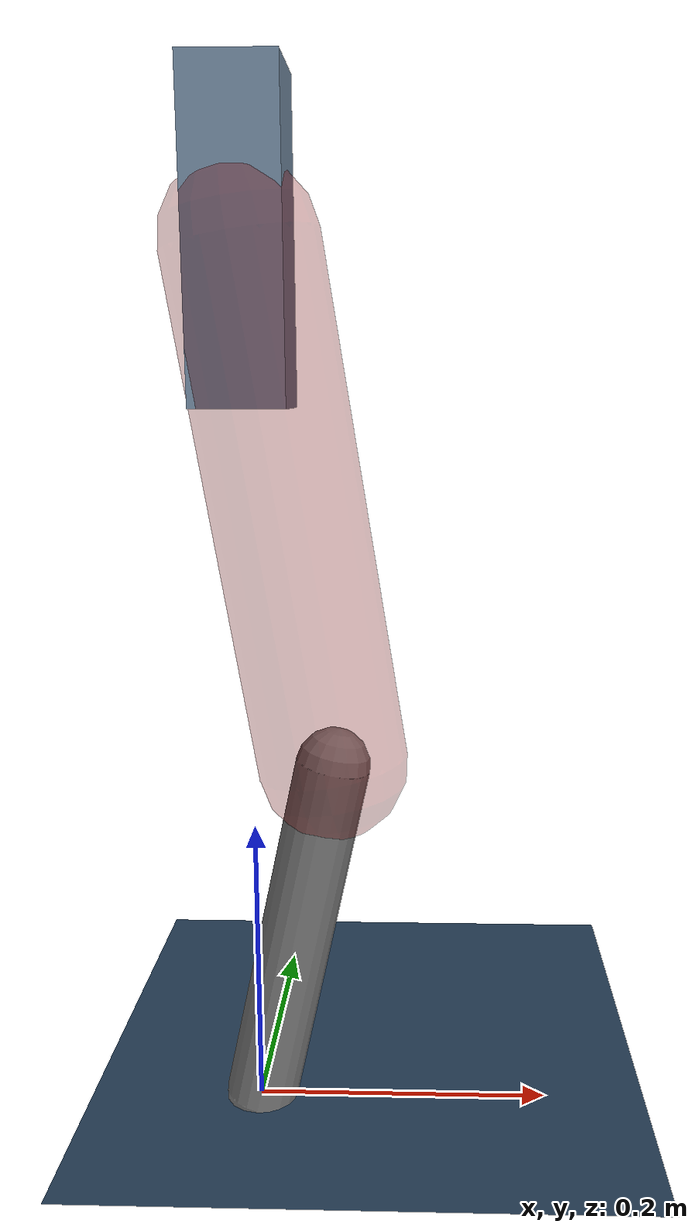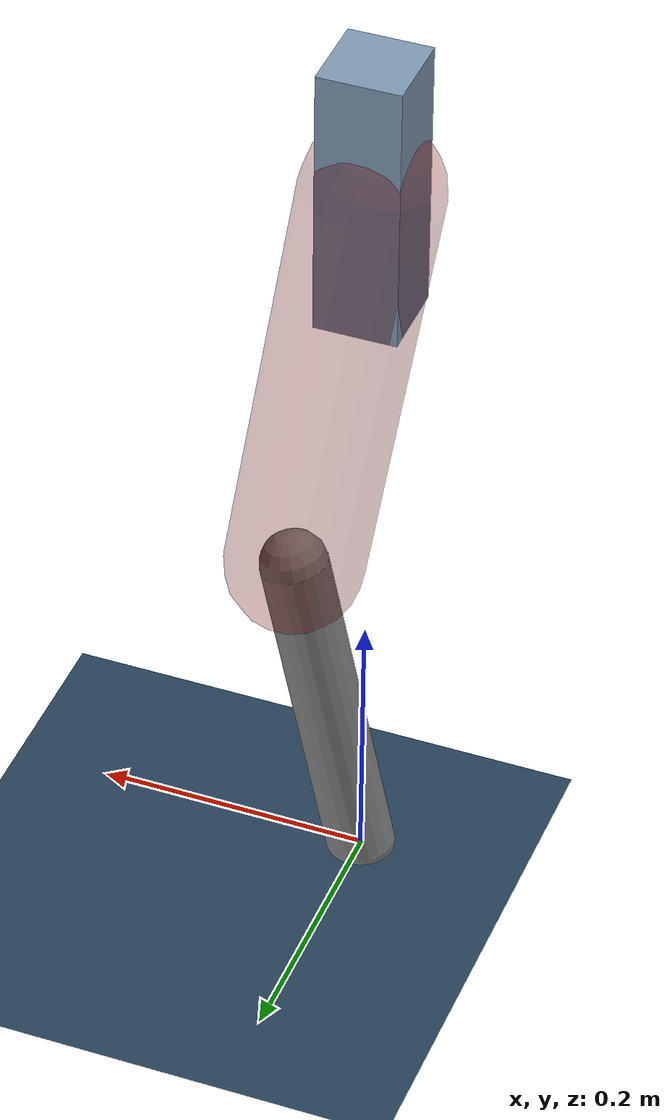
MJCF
<mujoco model="Hopper2D">
	<compiler inertiafromgeom="true" angle="radian" />
	<option timestep="0.001" integrator="implicit" cone="elliptic" solver="Newton" tolerance="1e-10" />

	<default>
		<geom contype="1" conaffinity="1" condim="3" friction="2 0.005 0.0001" solref="0.005 1" />
		<joint limited="true" damping="0.1" />
	</default>

	<asset>
		<texture name="skybox" type="skybox" builtin="gradient" rgb1=".4 .6 .8" rgb2="0 0 0" width="800" height="800" />
		<texture name="grid" type="2d" builtin="checker" rgb1=".1 .2 .3" rgb2=".2 .3 .4" width="300" height="300" mark="edge" markrgb=".2 .3 .4" />
		<material name="ground" texture="grid" texrepeat="1 1" texuniform="true" reflectance="0.1" />
		<material name="leg" rgba="0.5 0.6 0.7 1" />
	</asset>

	<worldbody>

		<geom name="floor" type="plane" size="5 5 0.25" material="ground" />

		<light directional="false" diffuse="0.8 0.8 0.8" specular="0.3 0.3 0.3" pos="0 0 2" dir="0 0 -1" />
		<light mode="targetbodycom" target="base" directional="false" diffuse="0.8 0.8 0.8" specular="0.3 0.3 0.3" pos="0 0 2" dir="0 0 -1" />

		<camera name="fixed" pos="0 -2 1" xyaxes="1 0 0 0 0 1" />
		<camera name="tracking" mode="trackcom" pos="0 -3 1" />

		<body name="root" pos="0 0 0.5775907808247305">
			<joint name="slide_x" type="slide" axis="1 0 0" range="-100 100" />
			<joint name="slide_z" type="slide" axis="0 0 1" range="0 10" />

			<body name="base" pos="0 0 0">
				<geom name="torso" type="box" size="0.03 0.03 0.1" mass="2.192" material="leg" />

				<body name="link1" pos="0 0 0" euler="0 1.4117571044421595 0">
					<joint type="hinge" axis="0 -1 0" pos="0 0 0" name="hinge1" limited="true" range="-3.14 3.14" stiffness="0" damping="0.1" />
					<geom name="thigh" type="capsule" fromto="0 0 0 0.33696696434569234 0 0" size="0.05" rgba="0.5 0 0 0.3" mass="1.0902075001679385" />

					<body name="link2" pos="0.33696696434569234 0 0" euler="0 0.37361199033527476 0">
						<joint type="hinge" axis="0 -1 0" pos="0 0 0" name="hinge2" limited="true" range="-3.14 3.14" stiffness="0" damping="0.1" />
						<geom name="shank" type="capsule" fromto="0 0 0 0.2506238164790381 0 0" size="0.025" mass="0.44299905318323046" />

					</body>
				</body>
			</body>
		</body>
	</worldbody>

	<actuator>
		<motor name="torque1" joint="hinge1" ctrlrange="-93.57575405360726 93.57575405360726" ctrllimited="true" gear="1" />
		<motor name="torque2" joint="hinge2" ctrlrange="-77.16569906721851 77.16569906721851" ctrllimited="true" gear="1" />
	</actuator>
</mujoco>
